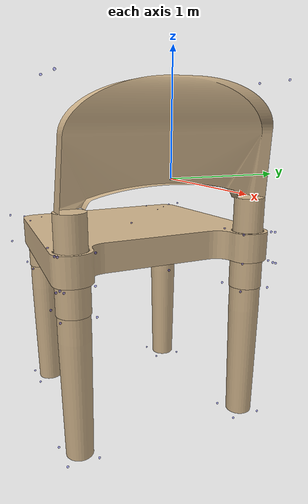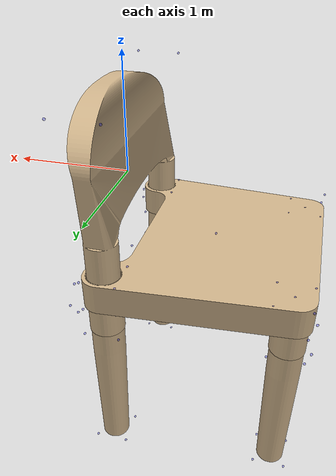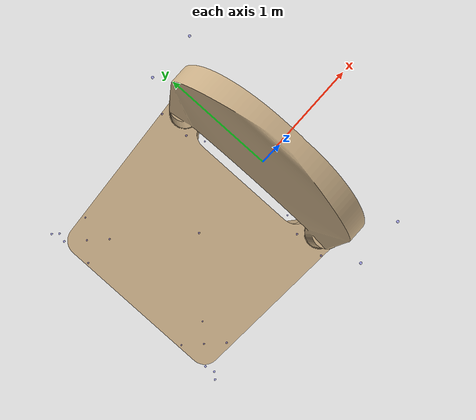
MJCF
<mujoco model="NAME">
  <asset>
    <mesh file="0.stl" name="part0" scale="1 1 1" />
    <mesh file="579.stl" name="part579" scale="1 1 1" />
    <mesh file="578.stl" name="part578" scale="1 1 1" />
    <mesh file="4.stl" name="part4" scale="1 1 1" />
    <mesh file="387.stl" name="part387" scale="1 1 1" />
    <mesh file="3.stl" name="part3" scale="1 1 1" />
    <mesh file="291.stl" name="part291" scale="1 1 1" />
    <mesh file="2.stl" name="part2" scale="1 1 1" />
    <mesh file="195.stl" name="part195" scale="1 1 1" />
    <mesh file="1.stl" name="part1" scale="1 1 1" />
  </asset>
  <equality>
    </equality>
  <worldbody>
    <body name="0_part0" pos="0.0 0.0 0.0" quat="1 0 0 0">
      <geom conaffinity="0" contype="0" density="0" mesh="part0" name="0_part0_mesh" pos="0 0 0" rgba="0.82 0.71 0.55 1" type="mesh" />
      <site name="0_part0_horizontal_radius_site" pos="0.0 0.0 0.0" quat="1 0 0 0" rgba="0 0 1 0.3" size="0.01" />
      <site name="0_part0_top_site" pos="0.0 0.0 0.769312" quat="1 0 0 0" rgba="0 0 1 0.3" size="0.01" />
      <site name="0_part0_bottom_site" pos="0.0 0.0 -0.769312" quat="1 0 0 0" rgba="0 0 1 0.3" size="0.01" />
      <site name="0_part0_corner_site8" pos="-0.193148 0.9689392 0.769312" quat="1 0 0 0" rgba="0 0 1 0.3" size="0.01" />
      <site name="0_part0_corner_site7" pos="0.193148 0.9689392 0.769312" quat="1 0 0 0" rgba="0 0 1 0.3" size="0.01" />
      <site name="0_part0_corner_site6" pos="0.193148 -0.9689392 0.769312" quat="1 0 0 0" rgba="0 0 1 0.3" size="0.01" />
      <site name="0_part0_corner_site5" pos="-0.193148 -0.9689392 0.769312" quat="1 0 0 0" rgba="0 0 1 0.3" size="0.01" />
      <site name="0_part0_corner_site4" pos="-0.193148 0.9689392 -0.769312" quat="1 0 0 0" rgba="0 0 1 0.3" size="0.01" />
      <site name="0_part0_corner_site3" pos="0.193148 0.9689392 -0.769312" quat="1 0 0 0" rgba="0 0 1 0.3" size="0.01" />
      <site name="0_part0_corner_site2" pos="0.193148 -0.9689392 -0.769312" quat="1 0 0 0" rgba="0 0 1 0.3" size="0.01" />
      <site name="0_part0_corner_site1" pos="-0.193148 -0.9689392 -0.769312" quat="1 0 0 0" rgba="0 0 1 0.3" size="0.01" />
    </body>
    <body name="9_part579" pos="-0.7982115 -0.0004045 -0.6479827" quat="1 0 0 0">
      <geom conaffinity="0" contype="0" density="0" mesh="part579" name="9_part579_mesh" pos="0 0 0" rgba="0.82 0.71 0.55 1" type="mesh" />
      <site name="9_part579_horizontal_radius_site" pos="0.0 0.0 -0.0" quat="1 0 0 0" rgba="0 0 1 0.3" size="0.01" />
      <site name="9_part579_top_site" pos="0.0 0.0 0.1409917" quat="1 0 0 0" rgba="0 0 1 0.3" size="0.01" />
      <site name="9_part579_bottom_site" pos="0.0 0.0 -0.1409917" quat="1 0 0 0" rgba="0 0 1 0.3" size="0.01" />
      <site name="9_part579_corner_site8" pos="-0.9095455 1.0074839 0.1409917" quat="1 0 0 0" rgba="0 0 1 0.3" size="0.01" />
      <site name="9_part579_corner_site7" pos="0.9095455 1.0074839 0.1409917" quat="1 0 0 0" rgba="0 0 1 0.3" size="0.01" />
      <site name="9_part579_corner_site6" pos="0.9095455 -1.0074839 0.1409917" quat="1 0 0 0" rgba="0 0 1 0.3" size="0.01" />
      <site name="9_part579_corner_site5" pos="-0.9095455 -1.0074839 0.1409917" quat="1 0 0 0" rgba="0 0 1 0.3" size="0.01" />
      <site name="9_part579_corner_site4" pos="-0.9095455 1.0074839 -0.1409917" quat="1 0 0 0" rgba="0 0 1 0.3" size="0.01" />
      <site name="9_part579_corner_site3" pos="0.9095455 1.0074839 -0.1409917" quat="1 0 0 0" rgba="0 0 1 0.3" size="0.01" />
      <site name="9_part579_corner_site2" pos="0.9095455 -1.0074839 -0.1409917" quat="1 0 0 0" rgba="0 0 1 0.3" size="0.01" />
      <site name="9_part579_corner_site1" pos="-0.9095455 -1.0074839 -0.1409917" quat="1 0 0 0" rgba="0 0 1 0.3" size="0.01" />
    </body>
    <body name="8_part578" pos="-0.0593545 0.834714 -0.7697545" quat="1 0 0 0">
      <geom conaffinity="0" contype="0" density="0" mesh="part578" name="8_part578_mesh" pos="0 0 0" rgba="0.82 0.71 0.55 1" type="mesh" />
      <site name="8_part578_horizontal_radius_site" pos="0.0 0.0 0.0" quat="1 0 0 0" rgba="0 0 1 0.3" size="0.01" />
      <site name="8_part578_top_site" pos="0.0 0.0 0.2630536" quat="1 0 0 0" rgba="0 0 1 0.3" size="0.01" />
      <site name="8_part578_bottom_site" pos="0.0 0.0 -0.2630536" quat="1 0 0 0" rgba="0 0 1 0.3" size="0.01" />
      <site name="8_part578_corner_site8" pos="-0.1469435 0.1490284 0.2630536" quat="1 0 0 0" rgba="0 0 1 0.3" size="0.01" />
      <site name="8_part578_corner_site7" pos="0.1469435 0.1490284 0.2630536" quat="1 0 0 0" rgba="0 0 1 0.3" size="0.01" />
      <site name="8_part578_corner_site6" pos="0.1469435 -0.1490284 0.2630536" quat="1 0 0 0" rgba="0 0 1 0.3" size="0.01" />
      <site name="8_part578_corner_site5" pos="-0.1469435 -0.1490284 0.2630536" quat="1 0 0 0" rgba="0 0 1 0.3" size="0.01" />
      <site name="8_part578_corner_site4" pos="-0.1469435 0.1490284 -0.2630536" quat="1 0 0 0" rgba="0 0 1 0.3" size="0.01" />
      <site name="8_part578_corner_site3" pos="0.1469435 0.1490284 -0.2630536" quat="1 0 0 0" rgba="0 0 1 0.3" size="0.01" />
      <site name="8_part578_corner_site2" pos="0.1469435 -0.1490284 -0.2630536" quat="1 0 0 0" rgba="0 0 1 0.3" size="0.01" />
      <site name="8_part578_corner_site1" pos="-0.1469435 -0.1490284 -0.2630536" quat="1 0 0 0" rgba="0 0 1 0.3" size="0.01" />
    </body>
    <body name="7_part4" pos="-0.0593545 0.8366922 -1.5558539" quat="1 0 0 0">
      <geom conaffinity="0" contype="0" density="0" mesh="part4" name="7_part4_mesh" pos="0 0 0" rgba="0.82 0.71 0.55 1" type="mesh" />
      <site name="7_part4_horizontal_radius_site" pos="0.0 0.0 -0.0" quat="1 0 0 0" rgba="0 0 1 0.3" size="0.01" />
      <site name="7_part4_top_site" pos="0.0 0.0 0.780576" quat="1 0 0 0" rgba="0 0 1 0.3" size="0.01" />
      <site name="7_part4_bottom_site" pos="0.0 0.0 -0.780576" quat="1 0 0 0" rgba="0 0 1 0.3" size="0.01" />
      <site name="7_part4_corner_site8" pos="-0.1395965 0.1415172 0.780576" quat="1 0 0 0" rgba="0 0 1 0.3" size="0.01" />
      <site name="7_part4_corner_site7" pos="0.1395965 0.1415172 0.780576" quat="1 0 0 0" rgba="0 0 1 0.3" size="0.01" />
      <site name="7_part4_corner_site6" pos="0.1395965 -0.1415172 0.780576" quat="1 0 0 0" rgba="0 0 1 0.3" size="0.01" />
      <site name="7_part4_corner_site5" pos="-0.1395965 -0.1415172 0.780576" quat="1 0 0 0" rgba="0 0 1 0.3" size="0.01" />
      <site name="7_part4_corner_site4" pos="-0.1395965 0.1415172 -0.780576" quat="1 0 0 0" rgba="0 0 1 0.3" size="0.01" />
      <site name="7_part4_corner_site3" pos="0.1395965 0.1415172 -0.780576" quat="1 0 0 0" rgba="0 0 1 0.3" size="0.01" />
      <site name="7_part4_corner_site2" pos="0.1395965 -0.1415172 -0.780576" quat="1 0 0 0" rgba="0 0 1 0.3" size="0.01" />
      <site name="7_part4_corner_site1" pos="-0.1395965 -0.1415172 -0.780576" quat="1 0 0 0" rgba="0 0 1 0.3" size="0.01" />
    </body>
    <body name="6_part387" pos="-1.536799 0.7277694 -0.7670892" quat="1 0 0 0">
      <geom conaffinity="0" contype="0" density="0" mesh="part387" name="6_part387_mesh" pos="0 0 0" rgba="0.82 0.71 0.55 1" type="mesh" />
      <site name="6_part387_horizontal_radius_site" pos="0.0 0.0 0.0" quat="1 0 0 0" rgba="0 0 1 0.3" size="0.01" />
      <site name="6_part387_top_site" pos="0.0 0.0 0.2527344" quat="1 0 0 0" rgba="0 0 1 0.3" size="0.01" />
      <site name="6_part387_bottom_site" pos="0.0 0.0 -0.2527344" quat="1 0 0 0" rgba="0 0 1 0.3" size="0.01" />
      <site name="6_part387_corner_site8" pos="-0.146944 0.1489461 0.2527344" quat="1 0 0 0" rgba="0 0 1 0.3" size="0.01" />
      <site name="6_part387_corner_site7" pos="0.146944 0.1489461 0.2527344" quat="1 0 0 0" rgba="0 0 1 0.3" size="0.01" />
      <site name="6_part387_corner_site6" pos="0.146944 -0.1489461 0.2527344" quat="1 0 0 0" rgba="0 0 1 0.3" size="0.01" />
      <site name="6_part387_corner_site5" pos="-0.146944 -0.1489461 0.2527344" quat="1 0 0 0" rgba="0 0 1 0.3" size="0.01" />
      <site name="6_part387_corner_site4" pos="-0.146944 0.1489461 -0.2527344" quat="1 0 0 0" rgba="0 0 1 0.3" size="0.01" />
      <site name="6_part387_corner_site3" pos="0.146944 0.1489461 -0.2527344" quat="1 0 0 0" rgba="0 0 1 0.3" size="0.01" />
      <site name="6_part387_corner_site2" pos="0.146944 -0.1489461 -0.2527344" quat="1 0 0 0" rgba="0 0 1 0.3" size="0.01" />
      <site name="6_part387_corner_site1" pos="-0.146944 -0.1489461 -0.2527344" quat="1 0 0 0" rgba="0 0 1 0.3" size="0.01" />
    </body>
    <body name="5_part3" pos="-1.5367995 0.7298105 -1.5610834" quat="1 0 0 0">
      <geom conaffinity="0" contype="0" density="0" mesh="part3" name="5_part3_mesh" pos="0 0 0" rgba="0.82 0.71 0.55 1" type="mesh" />
      <site name="5_part3_horizontal_radius_site" pos="0.0 -0.0 0.0" quat="1 0 0 0" rgba="0 0 1 0.3" size="0.01" />
      <site name="5_part3_top_site" pos="0.0 0.0 0.7805755" quat="1 0 0 0" rgba="0 0 1 0.3" size="0.01" />
      <site name="5_part3_bottom_site" pos="0.0 0.0 -0.7805755" quat="1 0 0 0" rgba="0 0 1 0.3" size="0.01" />
      <site name="5_part3_corner_site8" pos="-0.1395965 0.1415172 0.7805755" quat="1 0 0 0" rgba="0 0 1 0.3" size="0.01" />
      <site name="5_part3_corner_site7" pos="0.1395965 0.1415172 0.7805755" quat="1 0 0 0" rgba="0 0 1 0.3" size="0.01" />
      <site name="5_part3_corner_site6" pos="0.1395965 -0.1415172 0.7805755" quat="1 0 0 0" rgba="0 0 1 0.3" size="0.01" />
      <site name="5_part3_corner_site5" pos="-0.1395965 -0.1415172 0.7805755" quat="1 0 0 0" rgba="0 0 1 0.3" size="0.01" />
      <site name="5_part3_corner_site4" pos="-0.1395965 0.1415172 -0.7805755" quat="1 0 0 0" rgba="0 0 1 0.3" size="0.01" />
      <site name="5_part3_corner_site3" pos="0.1395965 0.1415172 -0.7805755" quat="1 0 0 0" rgba="0 0 1 0.3" size="0.01" />
      <site name="5_part3_corner_site2" pos="0.1395965 -0.1415172 -0.7805755" quat="1 0 0 0" rgba="0 0 1 0.3" size="0.01" />
      <site name="5_part3_corner_site1" pos="-0.1395965 -0.1415172 -0.7805755" quat="1 0 0 0" rgba="0 0 1 0.3" size="0.01" />
    </body>
    <body name="4_part291" pos="-1.5329455 -0.7156062 -0.7786061" quat="1 0 0 0">
      <geom conaffinity="0" contype="0" density="0" mesh="part291" name="4_part291_mesh" pos="0 0 0" rgba="0.82 0.71 0.55 1" type="mesh" />
      <site name="4_part291_horizontal_radius_site" pos="0.0 -0.0 0.0" quat="1 0 0 0" rgba="0 0 1 0.3" size="0.01" />
      <site name="4_part291_top_site" pos="0.0 0.0 0.2527344" quat="1 0 0 0" rgba="0 0 1 0.3" size="0.01" />
      <site name="4_part291_bottom_site" pos="0.0 0.0 -0.2527344" quat="1 0 0 0" rgba="0 0 1 0.3" size="0.01" />
      <site name="4_part291_corner_site8" pos="-0.1469435 0.1489466 0.2527344" quat="1 0 0 0" rgba="0 0 1 0.3" size="0.01" />
      <site name="4_part291_corner_site7" pos="0.1469435 0.1489466 0.2527344" quat="1 0 0 0" rgba="0 0 1 0.3" size="0.01" />
      <site name="4_part291_corner_site6" pos="0.1469435 -0.1489466 0.2527344" quat="1 0 0 0" rgba="0 0 1 0.3" size="0.01" />
      <site name="4_part291_corner_site5" pos="-0.1469435 -0.1489466 0.2527344" quat="1 0 0 0" rgba="0 0 1 0.3" size="0.01" />
      <site name="4_part291_corner_site4" pos="-0.1469435 0.1489466 -0.2527344" quat="1 0 0 0" rgba="0 0 1 0.3" size="0.01" />
      <site name="4_part291_corner_site3" pos="0.1469435 0.1489466 -0.2527344" quat="1 0 0 0" rgba="0 0 1 0.3" size="0.01" />
      <site name="4_part291_corner_site2" pos="0.1469435 -0.1489466 -0.2527344" quat="1 0 0 0" rgba="0 0 1 0.3" size="0.01" />
      <site name="4_part291_corner_site1" pos="-0.1469435 -0.1489466 -0.2527344" quat="1 0 0 0" rgba="0 0 1 0.3" size="0.01" />
    </body>
    <body name="3_part2" pos="-1.5329455 -0.7135646 -1.5726003" quat="1 0 0 0">
      <geom conaffinity="0" contype="0" density="0" mesh="part2" name="3_part2_mesh" pos="0 0 0" rgba="0.82 0.71 0.55 1" type="mesh" />
      <site name="3_part2_horizontal_radius_site" pos="0.0 0.0 0.0" quat="1 0 0 0" rgba="0 0 1 0.3" size="0.01" />
      <site name="3_part2_top_site" pos="0.0 0.0 0.7805755" quat="1 0 0 0" rgba="0 0 1 0.3" size="0.01" />
      <site name="3_part2_bottom_site" pos="0.0 0.0 -0.7805755" quat="1 0 0 0" rgba="0 0 1 0.3" size="0.01" />
      <site name="3_part2_corner_site8" pos="-0.1395965 0.1415172 0.7805755" quat="1 0 0 0" rgba="0 0 1 0.3" size="0.01" />
      <site name="3_part2_corner_site7" pos="0.1395965 0.1415172 0.7805755" quat="1 0 0 0" rgba="0 0 1 0.3" size="0.01" />
      <site name="3_part2_corner_site6" pos="0.1395965 -0.1415172 0.7805755" quat="1 0 0 0" rgba="0 0 1 0.3" size="0.01" />
      <site name="3_part2_corner_site5" pos="-0.1395965 -0.1415172 0.7805755" quat="1 0 0 0" rgba="0 0 1 0.3" size="0.01" />
      <site name="3_part2_corner_site4" pos="-0.1395965 0.1415172 -0.7805755" quat="1 0 0 0" rgba="0 0 1 0.3" size="0.01" />
      <site name="3_part2_corner_site3" pos="0.1395965 0.1415172 -0.7805755" quat="1 0 0 0" rgba="0 0 1 0.3" size="0.01" />
      <site name="3_part2_corner_site2" pos="0.1395965 -0.1415172 -0.7805755" quat="1 0 0 0" rgba="0 0 1 0.3" size="0.01" />
      <site name="3_part2_corner_site1" pos="-0.1395965 -0.1415172 -0.7805755" quat="1 0 0 0" rgba="0 0 1 0.3" size="0.01" />
    </body>
    <body name="2_part195" pos="-0.057424 -0.8308647 -0.7835104" quat="1 0 0 0">
      <geom conaffinity="0" contype="0" density="0" mesh="part195" name="2_part195_mesh" pos="0 0 0" rgba="0.82 0.71 0.55 1" type="mesh" />
      <site name="2_part195_horizontal_radius_site" pos="-0.0 -0.0 0.0" quat="1 0 0 0" rgba="0 0 1 0.3" size="0.01" />
      <site name="2_part195_top_site" pos="0.0 0.0 0.2630536" quat="1 0 0 0" rgba="0 0 1 0.3" size="0.01" />
      <site name="2_part195_bottom_site" pos="0.0 0.0 -0.2630536" quat="1 0 0 0" rgba="0 0 1 0.3" size="0.01" />
      <site name="2_part195_corner_site8" pos="-0.146944 0.1490289 0.2630536" quat="1 0 0 0" rgba="0 0 1 0.3" size="0.01" />
      <site name="2_part195_corner_site7" pos="0.146944 0.1490289 0.2630536" quat="1 0 0 0" rgba="0 0 1 0.3" size="0.01" />
      <site name="2_part195_corner_site6" pos="0.146944 -0.1490289 0.2630536" quat="1 0 0 0" rgba="0 0 1 0.3" size="0.01" />
      <site name="2_part195_corner_site5" pos="-0.146944 -0.1490289 0.2630536" quat="1 0 0 0" rgba="0 0 1 0.3" size="0.01" />
      <site name="2_part195_corner_site4" pos="-0.146944 0.1490289 -0.2630536" quat="1 0 0 0" rgba="0 0 1 0.3" size="0.01" />
      <site name="2_part195_corner_site3" pos="0.146944 0.1490289 -0.2630536" quat="1 0 0 0" rgba="0 0 1 0.3" size="0.01" />
      <site name="2_part195_corner_site2" pos="0.146944 -0.1490289 -0.2630536" quat="1 0 0 0" rgba="0 0 1 0.3" size="0.01" />
      <site name="2_part195_corner_site1" pos="-0.146944 -0.1490289 -0.2630536" quat="1 0 0 0" rgba="0 0 1 0.3" size="0.01" />
    </body>
    <body name="1_part1" pos="-0.057424 -0.8288889 -1.5693893" quat="1 0 0 0">
      <geom conaffinity="0" contype="0" density="0" mesh="part1" name="1_part1_mesh" pos="0 0 0" rgba="0.82 0.71 0.55 1" type="mesh" />
      <site name="1_part1_horizontal_radius_site" pos="0.0 -0.0 0.0" quat="1 0 0 0" rgba="0 0 1 0.3" size="0.01" />
      <site name="1_part1_top_site" pos="0.0 0.0 0.7805755" quat="1 0 0 0" rgba="0 0 1 0.3" size="0.01" />
      <site name="1_part1_bottom_site" pos="0.0 0.0 -0.7805755" quat="1 0 0 0" rgba="0 0 1 0.3" size="0.01" />
      <site name="1_part1_corner_site8" pos="-0.139597 0.1415172 0.7805755" quat="1 0 0 0" rgba="0 0 1 0.3" size="0.01" />
      <site name="1_part1_corner_site7" pos="0.139597 0.1415172 0.7805755" quat="1 0 0 0" rgba="0 0 1 0.3" size="0.01" />
      <site name="1_part1_corner_site6" pos="0.139597 -0.1415172 0.7805755" quat="1 0 0 0" rgba="0 0 1 0.3" size="0.01" />
      <site name="1_part1_corner_site5" pos="-0.139597 -0.1415172 0.7805755" quat="1 0 0 0" rgba="0 0 1 0.3" size="0.01" />
      <site name="1_part1_corner_site4" pos="-0.139597 0.1415172 -0.7805755" quat="1 0 0 0" rgba="0 0 1 0.3" size="0.01" />
      <site name="1_part1_corner_site3" pos="0.139597 0.1415172 -0.7805755" quat="1 0 0 0" rgba="0 0 1 0.3" size="0.01" />
      <site name="1_part1_corner_site2" pos="0.139597 -0.1415172 -0.7805755" quat="1 0 0 0" rgba="0 0 1 0.3" size="0.01" />
      <site name="1_part1_corner_site1" pos="-0.139597 -0.1415172 -0.7805755" quat="1 0 0 0" rgba="0 0 1 0.3" size="0.01" />
    </body>
  </worldbody>
</mujoco>
